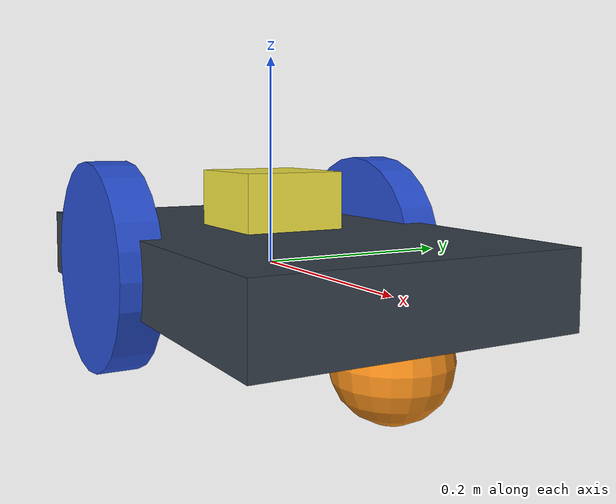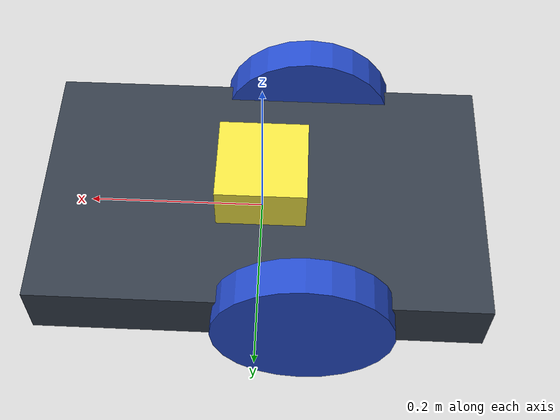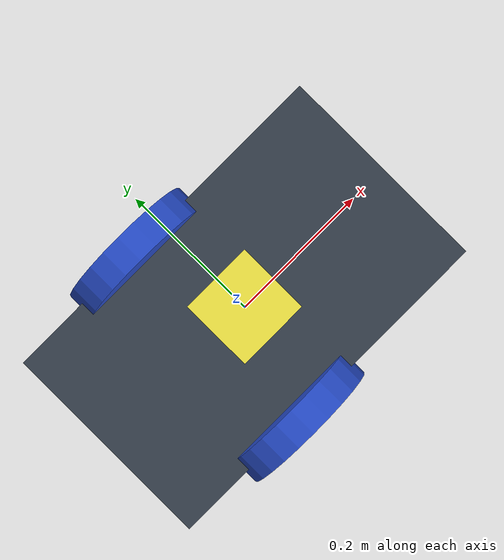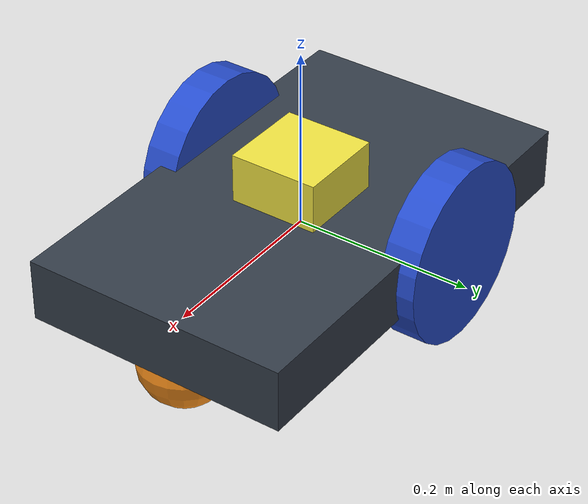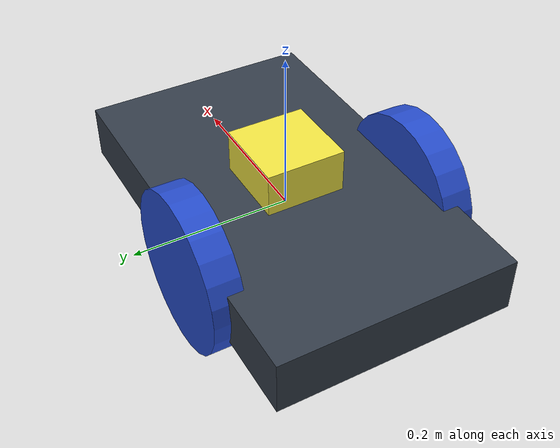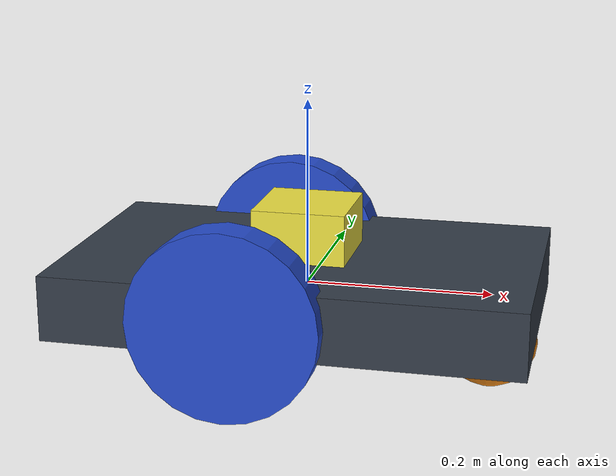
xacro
<?xml version="1.0" ?>
<robot name="r2w" xmlns:xacro="http://www.ros.org/wiki/xacro">

  <material name="black">
    <color rgba="0.0 0.0 0.0 1.0"/>
  </material>
  <material name="blue">
    <color rgba="0.203125 0.23828125 0.28515625 1.0"/>
  </material>
  <material name="green">
    <color rgba="0.0 0.8 0.0 1.0"/>
  </material>
  <material name="grey">
    <color rgba="0.2 0.2 0.2 1.0"/>
  </material>
  <material name="orange">
    <color rgba="1.0 0.423529411765 0.0392156862745 1.0"/>
  </material>
  <material name="brown">
    <color rgba="0.870588235294 0.811764705882 0.764705882353 1.0"/>
  </material>
  <material name="red">
    <color rgba="0.80078125 0.12890625 0.1328125 1.0"/>
  </material>
  <material name="white">
    <color rgba="1.0 1.0 1.0 1.0"/>
  </material>

  <gazebo reference="link_chassis">
    <material>Gazebo/Orange</material>
  </gazebo>
  <gazebo reference="link_left_wheel">
    <material>Gazebo/Blue</material>
  </gazebo>
  <gazebo reference="link_right_wheel">
    <material>Gazebo/Blue</material>
  </gazebo>
  <gazebo>
    <plugin filename="libgazebo_ros_diff_drive.so" name="differential_drive_controller">
      <alwaysOn>true</alwaysOn>
      <updateRate>20</updateRate>
      <leftJoint>joint_left_wheel</leftJoint>
      <rightJoint>joint_right_wheel</rightJoint>
      <wheelSeparation>0.3</wheelSeparation>
      <wheelDiameter>0.2</wheelDiameter>
      <torque>0.1</torque>
      <commandTopic>cmd_vel</commandTopic>
      <odometryTopic>odom</odometryTopic>
      <odometryFrame>odom</odometryFrame>
      <robotBaseFrame>link_chassis</robotBaseFrame>
    </plugin>
  </gazebo>

  <link name="link_chassis">
    <!-- pose and inertial -->
    <pose>0 0 0.1 0 0 0</pose>
    <inertial>
      <mass value="5"/>
      <origin rpy="0 0 0" xyz="0 0 0.1"/>
      <inertia ixx="0.0395416666667" ixy="0" ixz="0" iyy="0.106208333333" iyz="0" izz="0.106208333333"/>
    </inertial>
    <!-- body -->
    <collision name="collision_chassis">
      <geometry>
        <box size="0.5 0.3 0.07"/>
      </geometry>
    </collision>
    <visual>
      <origin rpy="0 0 0" xyz="0 0 0"/>
      <geometry>
        <box size="0.5 0.3 0.07"/>
      </geometry>
      <material name="blue"/>
    </visual>
    <!-- caster front -->
    <collision name="caster_front_collision">
      <origin rpy=" 0 0 0" xyz="0.35 0 -0.05"/>
      <geometry>
        <sphere radius="0.05"/>
      </geometry>
      <surface>
        <friction>
          <ode>
            <mu>0</mu>
            <mu2>0</mu2>
            <slip1>1</slip1>
            <slip2>1</slip2>
          </ode>
        </friction>
      </surface>
    </collision>
    <visual name="caster_front_visual">
      <origin rpy=" 0 0 0" xyz="0.2 0 -0.05"/>
      <geometry>
        <sphere radius="0.05"/>
      </geometry>
    </visual>
  </link>
  <!-- Create wheel right -->

  <link name="link_right_wheel">
    <inertial>
      <mass value="0.2"/>
      <origin rpy="0 1.5707 1.5707" xyz="0 0 0"/>
      <inertia ixx="0.000526666666667" ixy="0" ixz="0" iyy="0.000526666666667" iyz="0" izz="0.001"/>
    </inertial>
    <collision name="link_right_wheel_collision">
      <origin rpy="0 1.5707 1.5707" xyz="0 0 0"/>
      <geometry>
        <cylinder length="0.04" radius="0.1"/>
      </geometry>
    </collision>
    <visual name="link_right_wheel_visual">
      <origin rpy="0 1.5707 1.5707" xyz="0 0 0"/>
      <geometry>
        <cylinder length="0.04" radius="0.1"/>
      </geometry>
    </visual>
  </link>

  <!-- joint for Right Wheel link -->
  <joint name="joint_right_wheel" type="continuous">
    <origin rpy="0 0 0" xyz="-0.05 0.15 0"/>
    <child link="link_right_wheel"/>
    <parent link="link_chassis"/>
    <axis rpy="0 0 0" xyz="0 1 0"/>
    <limit effort="10000" velocity="1000"/>
    <joint_properties damping="1.0" friction="1.0"/>
  </joint>

  <!-- Left Wheel link -->

  <link name="link_left_wheel">
    <inertial>
      <mass value="0.2"/>
      <origin rpy="0 1.5707 1.5707" xyz="0 0 0"/>
      <inertia ixx="0.000526666666667" ixy="0" ixz="0" iyy="0.000526666666667" iyz="0" izz="0.001"/>
    </inertial>
    <collision name="link_left_wheel_collision">
      <origin rpy="0 1.5707 1.5707" xyz="0 0 0"/>
      <geometry>
        <cylinder length="0.04" radius="0.1"/>
      </geometry>
    </collision>
    <visual name="link_left_wheel_visual">
      <origin rpy="0 1.5707 1.5707" xyz="0 0 0"/>
      <geometry>
        <cylinder length="0.04" radius="0.1"/>
      </geometry>
    </visual>
  </link>
  <!-- joint for Left Wheel link -->
  <joint name="joint_left_wheel" type="continuous">
    <origin rpy="0 0 0" xyz="-0.05 -0.15 0"/>
    <child link="link_left_wheel"/>
    <parent link="link_chassis"/>
    <axis rpy="0 0 0" xyz="0 1 0"/>
    <limit effort="10000" velocity="1000"/>
    <joint_properties damping="1.0" friction="1.0"/>
  </joint>

        <!--add a hokuyo laser-->
        <link name="laser_link">
                <collision>
                        <origin xyz="0 0 0" rpy="0 0 0"/>
                        <geometry>
                                <box size="0.1 0.1 0.1"/>
                        </geometry>
                </collision>
                <visual>
                        <origin xyz="0 0 0" rpy="0 0 0"/>
                        <geometry>
                                <box size="0.1 0.1 0.1"/>
                        </geometry>
                </visual>
                <inertial>
                        <mass value="1e-5"/>
                        <origin xyz="0 0 0" rpy="0 0 0"/>
                        <inertia ixx="1e-6" ixy="0" ixz="0" iyy="1e-6" iyz="0" izz="1e-6"/>
                </inertial>
        </link>

        <joint name="hokuyo_joint" type="fixed">
                <axis xyz="0 1 0"/>
                <origin xyz="0 0 0.04" rpy="0 0 0"/>
                <parent link="link_chassis"/>
                <child link="laser_link"/>
        </joint>

        <!--hokuyo laser plugin-->
        <gazebo reference="laser_link">
                <sensor type="ray" name="head_hokuyo_sensor">
                        <pose>0 0 0 0 0 0</pose>
                        <visualize>true</visualize>
                        <update_rate>20</update_rate>
                        <ray>
                                <scan>
                                        <horizontal>
                                                <samples>720</samples>
                                                <resolution>1</resolution>
                                                <min_angle>-1.7</min_angle>
                                                <max_angle>1.7</max_angle>
                                        </horizontal>
                                </scan>
                                <range>
                                        <min>0.1</min>
                                        <max>10.0</max>
                                        <resolution>0.1</resolution>
                                </range>
                                <noise>
                                        <type>gaussian</type>
                                        <mean>0.0</mean>
                                        <stddev>0.001</stddev>
                                </noise>
                        </ray>
                        <plugin name="gazebo_ros_head_hokuyo_controller" filename="libgazebo_ros_laser.so">
                                <topicName>/scan</topicName>
                                <frameName>/laser_link</frameName>
                        </plugin>
                </sensor>
        </gazebo>

</robot>
